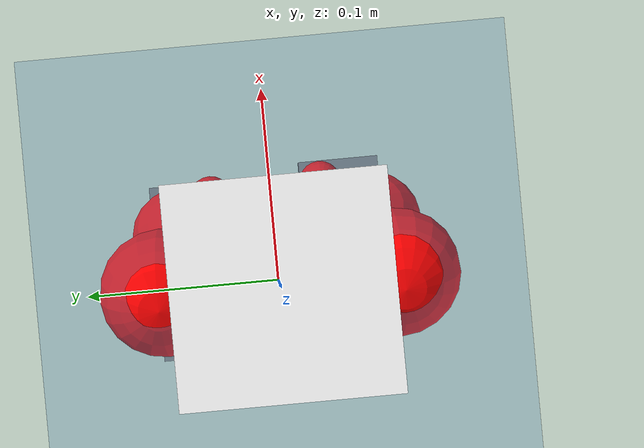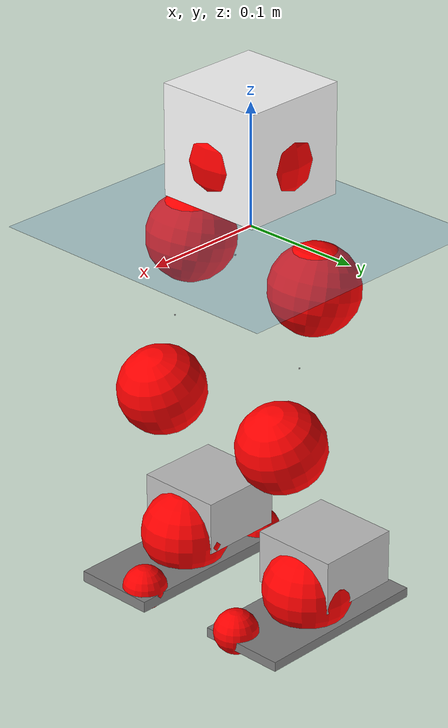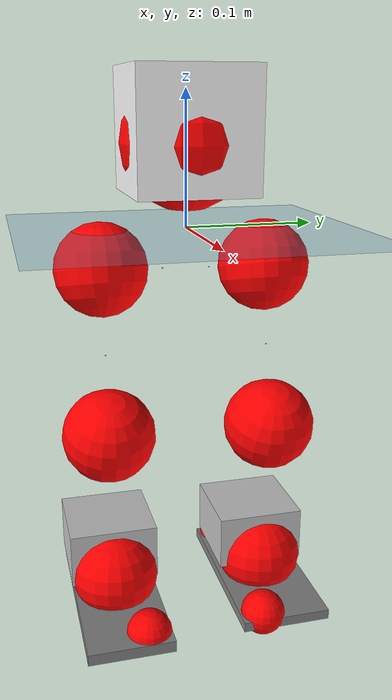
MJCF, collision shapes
<mujoco model="pi_12dof_release_v1">
  <compiler angle="radian" assetdir="assets" balanceinertia="true" inertiafromgeom="false"/>

  <option timestep="0.005" density="1.2" viscosity="2e-05"/>

  <size nkey="1"/>

  <visual>
    <quality shadowsize="8192"/>
    <map shadowclip="0.5"/>
  </visual>

  <default>
    <default class="/">
      <joint armature="0.01" damping="0.01" frictionloss="0.01"/>
      <geom contype="0" conaffinity="0" group="1" solref="-1000 -80"/>
      <site size="0.01 0.005 0.005" group="5"/>
      <general forcelimited="true" biastype="affine" gainprm="20" biasprm="0 -20 -0.5"/>
      <default class="foot">
        <geom size="0.0845 0.036 0.005" type="box" condim="6" group="4" priority="1" friction="0.9 0.2 0.2" solimp="0.015 1 0.005"/>
      </default>
      <default class="reward_collision_sphere">
        <geom group="5" rgba="1 0 0 1"/>
      </default>
    </default>
  </default>

  <asset>
    <texture type="skybox" colorspace="auto" name="//unnamed_texture_0" builtin="gradient" rgb1="0.95 0.95 0.95" rgb2="0.95 0.95 0.95" width="100" height="600"/>
    <texture type="2d" colorspace="auto" name="texplane" builtin="checker" rgb1="0.345 0.575 0.748" rgb2="0.345 0.575 0.748" markrgb="1 1 1" width="512" height="512"/>
    <material name="MatPlane" class="/" texture="texplane" texuniform="true" texrepeat="2 2" specular="0.9"/>
    <mesh name="baselink_1" class="/" file="baselink_1.STL"/>
    <mesh name="r_hip_pitch_link" class="/" file="r_hip_pitch_link.STL"/>
    <mesh name="r_hip_roll_link" class="/" file="r_hip_roll_link.STL"/>
    <mesh name="r_thigh_link" class="/" file="r_thigh_link.STL"/>
    <mesh name="r_calf_link" class="/" file="r_calf_link.STL"/>
    <mesh name="r_ankle_pitch_link" class="/" file="r_ankle_pitch_link.STL"/>
    <mesh name="r_ankle_roll_link" class="/" file="r_ankle_roll_link.STL"/>
    <mesh name="l_hip_pitch_link" class="/" file="l_hip_pitch_link.STL"/>
    <mesh name="l_hip_roll_link" class="/" file="l_hip_roll_link.STL"/>
    <mesh name="l_thigh_link" class="/" file="l_thigh_link.STL"/>
    <mesh name="l_calf_link" class="/" file="l_calf_link.STL"/>
    <mesh name="l_ankle_pitch_link" class="/" file="l_ankle_pitch_link.STL"/>
    <mesh name="l_ankle_roll_link" class="/" file="l_ankle_roll_link.STL"/>
  </asset>

  <worldbody>
    <geom name="floor" class="/" size="100 100 0.125" type="plane" group="0" material="MatPlane"/>
    <light name="toplight_shadow" class="/" pos="0 0 5" dir="0.0990148 0.0990148 -0.990148" type="directional" ambient="0.04 0.04 0.04" diffuse="0.55 0.55 0.55" specular="0.12 0.12 0.12"/>
    <light name="toplight_fill" class="/" pos="0 0 5" dir="0.0990148 0.0990148 -0.990148" type="directional" castshadow="false" ambient="0.04 0.04 0.04" diffuse="0.3 0.3 0.3" specular="0.08 0.08 0.08"/>
    <body name="trunk" pos="0.000323639 -0.00019272 -0.001333" quat="1 -2.7213e-05 -1.41609e-05 9.31137e-06">
      <inertial pos="0.000311414 -0.00315179 0.0359913" quat="0.695768 0.011426 0.0135115 0.718049" mass="1.56693" diaginertia="0.00807025 0.00390074 0.0025377"/>
      <joint name="//unnamed_joint_0" type="free"/>
      <geom name="//unnamed_geom_1" class="/" type="mesh" density="0" rgba="1 1 1 1" mesh="baselink_1"/>
      <geom name="//unnamed_geom_2" class="/" size="0.0449906 0.0449906 0.0449906" pos="0 0 0.0720802" type="box" rgba="1 1 1 1"/>
      <geom name="//unnamed_geom_3" class="reward_collision_sphere" size="0.0494896" pos="0 0 0.0630701"/>
      <site name="imu" class="/" pos="-0.013206 0.0013637 0.0117577" size="0.00899811"/>
      <camera name="track" class="/" pos="0 -1.68225 0" quat="0.707107 0.707107 0 0" mode="trackcom"/>
      <camera name="ego_camera" class="/" pos="0.0717979 0 0.16218" quat="-0.5 -0.5 0.5 0.5"/>
      <body name="r_hip_pitch_link" pos="-0.00225227 -0.0179934 -0.0292441" quat="0.992178 0.000116791 -0.124832 -0.000250446">
        <inertial pos="0.00343046 -0.0475852 -0.000303113" quat="-0.0161641 0.705656 -0.0298606 0.707741" mass="0.259615" diaginertia="8.39787e-05 4.11244e-05 4.84224e-05"/>
        <joint name="r_hip_pitch_joint" class="/" pos="0 0 0" axis="0.00327325 -0.99995 0.00943875" stiffness="0.0105389" range="-1.75104 1.19865" armature="0.00915233" damping="0" frictionloss="0.00940029"/>
        <geom name="//unnamed_geom_4" class="/" type="mesh" density="0" rgba="0.75294 0.75294 0.75294 1" mesh="r_hip_pitch_link"/>
        <geom name="//unnamed_geom_5" class="/" size="0.000449906 0.000449906 0.000449906" type="box" rgba="0.75294 0.75294 0.75294 1"/>
        <body name="r_hip_roll_link" pos="-0.000300324 -0.0472992 0.00103942" quat="1 9.83228e-05 5.46062e-05 0.000113494">
          <inertial pos="-0.00140169 6.26801e-06 -0.0529765" quat="0.703016 -0.0790857 -0.0795721 0.70227" mass="0.287662" diaginertia="0.000262094 0.000117945 7.74022e-05"/>
          <joint name="r_hip_roll_joint" class="/" pos="0 0 0" axis="-0.999923 0.0123725 -0.000112668" stiffness="0.00273879" range="-0.168816 0.480401" armature="0.00924637" damping="0.00820987" frictionloss="0.00971362"/>
          <geom name="//unnamed_geom_6" class="/" type="mesh" density="0" rgba="0.75294 0.75294 0.75294 1" mesh="r_hip_roll_link"/>
          <geom name="//unnamed_geom_7" class="/" size="0.000449906 0.000449906 0.000449906" type="box" rgba="0.75294 0.75294 0.75294 1"/>
          <geom name="//unnamed_geom_8" class="reward_collision_sphere" size="0.0359925"/>
          <body name="r_thigh_link" pos="0.00151915 -0.00126449 -0.0646712" quat="1 0.000483299 -0.000834405 0.000132592">
            <inertial pos="0.000878 0.000836138 -0.0417628" quat="0.734876 0.67819 -0.0026964 0.00280712" mass="0.0812731" diaginertia="0.00010022 3.96415e-05 3.4661e-05"/>
            <joint name="r_thigh_joint" class="/" pos="0 0 0" axis="-0.00694347 0.00426592 -0.999967" range="-0.318336 0.577646" armature="0.00865871" damping="0.000835763" frictionloss="0.00875983"/>
            <geom name="//unnamed_geom_9" class="/" type="mesh" density="0" rgba="0.75294 0.75294 0.75294 1" mesh="r_thigh_link"/>
            <geom name="//unnamed_geom_10" class="/" size="0.000449906 0.000449906 0.000449906" type="box" rgba="0.75294 0.75294 0.75294 1"/>
            <body name="r_calf_link" pos="-0.00171041 -0.00137366 -0.0615333" quat="0.947676 -0.000336868 0.319234 7.51581e-05">
              <inertial pos="0.00191664 -0.000998101 -0.062521" quat="0.999981 -0.00357924 -6.40874e-05 0.0049896" mass="0.606863" diaginertia="0.0028744 0.00149777 0.000104818"/>
              <joint name="r_calf_joint" class="/" pos="0 0 0" axis="0.00168888 -0.999998 0.00080486" range="-1.66029 0.65506" armature="0.00849538" damping="0.0134783" frictionloss="0.00901633"/>
              <geom name="//unnamed_geom_11" class="/" type="mesh" density="0" rgba="0.75294 0.75294 0.75294 1" mesh="r_calf_link"/>
              <geom name="//unnamed_geom_12" class="/" size="0.000449906 0.000449906 0.000449906" type="box" rgba="0.75294 0.75294 0.75294 1"/>
              <geom name="//unnamed_geom_13" class="reward_collision_sphere" size="0.0359925"/>
              <body name="r_ankle_pitch_link" pos="0.000416312 0.00300451 -0.126533" quat="0.980079 -3.59255e-05 -0.19861 2.83093e-05">
                <inertial pos="0.00470703 0.00250063 -0.0006058" quat="0.00587408 0.713587 -0.00762151 0.700501" mass="0.121335" diaginertia="0.000242758 9.23831e-05 6.93884e-05"/>
                <joint name="r_ankle_pitch_joint" class="/" pos="0 0 0" axis="0.00446101 -0.999977 0.00519315" range="-1.27549 0.483462" armature="0.00934008" damping="0" frictionloss="0.00900196"/>
                <geom name="//unnamed_geom_14" class="/" type="mesh" density="0" rgba="0.75294 0.75294 0.75294 1" mesh="r_ankle_pitch_link"/>
                <geom name="//unnamed_geom_15" class="/" size="0.0350926 0.0359925 0.0224953" type="box" rgba="0.75294 0.75294 0.75294 1"/>
                <body name="r_ankle_roll_link" pos="0.0760036 0.000664577 -3.82835e-05" quat="1 0.000123558 -6.75688e-05 3.60681e-05">
                  <inertial pos="-0.0227306 -9.52737e-05 -0.0106067" quat="0.561816 0.431197 0.433467 0.557259" mass="0.379001" diaginertia="0.000877828 0.000422543 0.000168965"/>
                  <joint name="r_ankle_roll_joint" class="/" pos="0 0 0" axis="-0.999994 0.0015603 0.00302336" stiffness="0.00174799" range="-0.175786 0.138999" armature="0.00853233" damping="0" frictionloss="0.0100108"/>
                  <geom name="//unnamed_geom_16" class="/" type="mesh" density="0" rgba="0.75294 0.75294 0.75294 1" mesh="r_ankle_roll_link"/>
                  <geom name="//unnamed_geom_17" class="/" type="mesh" rgba="0.75294 0.75294 0.75294 1" mesh="r_ankle_roll_link"/>
                  <geom name="right_foot" class="foot" size="0.0813571 0.034307 0.00464025" pos="-0.0488226 0 -0.0396441"/>
                  <geom name="//unnamed_geom_19" class="reward_collision_sphere" size="0.0359925" pos="-0.0478653 0 -0.01802"/>
                  <geom name="//unnamed_geom_20" class="reward_collision_sphere" size="0.0179962" pos="0.0143596 0.0168225 -0.0360401"/>
                  <geom name="//unnamed_geom_21" class="reward_collision_sphere" size="0.0179962" pos="-0.114877 0.0168225 -0.0360401"/>
                  <site name="right_foot" class="foot" pos="-0.0488226 0 -0.0396441" size="0.00899811"/>
                </body>
              </body>
            </body>
          </body>
        </body>
      </body>
      <body name="l_hip_pitch_link" pos="-0.00241777 0.0189698 -0.0301636" quat="0.992175 0.000213068 -0.124858 0.000197558">
        <inertial pos="0.000685029 0.0475201 0.000338902" quat="-0.0361081 0.705546 0.0267203 0.707239" mass="0.281839" diaginertia="0.000101465 4.44408e-05 5.64473e-05"/>
        <joint name="l_hip_pitch_joint" class="/" pos="0 0 0" axis="0.00604442 0.999982 0.000444728" stiffness="0.00014984" range="-1.29533 1.73186" armature="0.0101576" damping="0.000641899" frictionloss="0.00931562"/>
        <geom name="//unnamed_geom_22" class="/" type="mesh" density="0" rgba="0.75294 0.75294 0.75294 1" mesh="l_hip_pitch_link"/>
        <geom name="//unnamed_geom_23" class="/" size="0.000449906 0.000449906 0.000449906" type="box" rgba="0.75294 0.75294 0.75294 1"/>
        <body name="l_hip_roll_link" pos="-0.000273004 0.0446443 -0.00036739" quat="1 -7.8981e-08 2.18338e-08 1.0189e-07">
          <inertial pos="-0.000982764 0.00183591 -0.0542544" quat="0.698317 -0.0737942 -0.0775335 0.707741" mass="0.283255" diaginertia="0.000268496 0.000115986 7.5435e-05"/>
          <joint name="l_hip_roll_joint" class="/" pos="0 0 0" axis="-0.999896 0.0122075 0.00768304" range="-0.447676 0.133747" armature="0.00880128" damping="0.00727495" frictionloss="0.00794106"/>
          <geom name="//unnamed_geom_24" class="/" type="mesh" density="0" rgba="0.75294 0.75294 0.75294 1" mesh="l_hip_roll_link"/>
          <geom name="//unnamed_geom_25" class="/" size="0.000449906 0.000449906 0.000449906" type="box" rgba="0.75294 0.75294 0.75294 1"/>
          <geom name="//unnamed_geom_26" class="reward_collision_sphere" size="0.0359925"/>
          <body name="l_thigh_link" pos="-0.000633316 -0.000833601 -0.0629386" quat="1 -0.000136725 0.00026906 0.000162117">
            <inertial pos="0.000355429 -0.00166563 -0.0437431" quat="0.68468 0.728836 -0.000223325 -0.00334506" mass="0.0817377" diaginertia="0.000100714 3.9657e-05 3.31173e-05"/>
            <joint name="l_thigh_joint" class="/" pos="0 0 0" axis="-0.00288335 0.00361431 -0.999989" range="-0.616115 0.311564" armature="0.00902027" damping="0" frictionloss="0.00940546"/>
            <geom name="//unnamed_geom_27" class="/" type="mesh" density="0" rgba="0.75294 0.75294 0.75294 1" mesh="l_thigh_link"/>
            <geom name="//unnamed_geom_28" class="/" size="0.000449906 0.000449906 0.000449906" type="box" rgba="0.75294 0.75294 0.75294 1"/>
            <body name="l_calf_link" pos="0.00117319 -0.00189036 -0.0641315" quat="0.947611 0.000732762 0.319425 -0.000666489">
              <inertial pos="-0.00220511 0.00261355 -0.061155" quat="0.999948 0.00426953 0.00324775 0.00865338" mass="0.592801" diaginertia="0.00281831 0.00147372 0.000100229"/>
              <joint name="l_calf_joint" class="/" pos="0 0 0" axis="0.00263787 0.999995 0.00145072" range="-0.665851 1.60025" armature="0.00797419" damping="0.00693777" frictionloss="0.00792668"/>
              <geom name="//unnamed_geom_29" class="/" type="mesh" density="0" rgba="0.75294 0.75294 0.75294 1" mesh="l_calf_link"/>
              <geom name="//unnamed_geom_30" class="/" size="0.000449906 0.000449906 0.000449906" type="box" rgba="0.75294 0.75294 0.75294 1"/>
              <geom name="//unnamed_geom_31" class="reward_collision_sphere" size="0.0359925"/>
              <body name="l_ankle_pitch_link" pos="0.000762047 0.00145098 -0.123838" quat="0.980058 9.76921e-05 -0.19871 0.000241643">
                <inertial pos="0.00626425 0.000341788 -0.000448302" quat="-0.00230777 0.706991 0.00242345 0.707215" mass="0.119881" diaginertia="0.000232568 9.08107e-05 6.79867e-05"/>
                <joint name="l_ankle_pitch_joint" class="/" pos="0 0 0" axis="-0.002913 0.999967 -0.00763008" range="-0.504735 1.29458" armature="0.00918462" damping="0" frictionloss="0.0101727"/>
                <geom name="//unnamed_geom_32" class="/" type="mesh" density="0" rgba="0.75294 0.75294 0.75294 1" mesh="l_ankle_pitch_link"/>
                <geom name="//unnamed_geom_33" class="/" size="0.0350926 0.0359925 0.0224953" type="box" rgba="0.75294 0.75294 0.75294 1"/>
                <body name="l_ankle_roll_link" pos="0.0695339 0.00260168 -0.0008459" quat="1 1.37519e-07 -5.13938e-07 -1.71278e-06">
                  <inertial pos="-0.0230117 -0.000400111 -0.0126339" quat="0.557881 0.435206 0.425883 0.563904" mass="0.379886" diaginertia="0.000909992 0.000447962 0.000170173"/>
                  <joint name="l_ankle_roll_joint" class="/" pos="0 0 0" axis="-0.999997 0.000657983 -0.00227511" stiffness="0.000710514" range="-0.156095 0.150455" armature="0.00944885" damping="0.00815301" frictionloss="0.00782454"/>
                  <geom name="//unnamed_geom_34" class="/" type="mesh" density="0" rgba="0.75294 0.75294 0.75294 1" mesh="l_ankle_roll_link"/>
                  <geom name="//unnamed_geom_35" class="/" type="mesh" rgba="0.75294 0.75294 0.75294 1" mesh="l_ankle_roll_link"/>
                  <geom name="left_foot" class="foot" size="0.0756132 0.0361596 0.00402814" pos="-0.0488226 0 -0.0396441"/>
                  <geom name="//unnamed_geom_37" class="reward_collision_sphere" size="0.0359925" pos="-0.0478653 0 -0.01802"/>
                  <geom name="//unnamed_geom_38" class="reward_collision_sphere" size="0.0179962" pos="0.0143596 -0.0168225 -0.0360401"/>
                  <geom name="//unnamed_geom_39" class="reward_collision_sphere" size="0.0179962" pos="-0.114877 -0.0168225 -0.0360401"/>
                  <site name="left_foot" class="foot" pos="-0.0488226 0 -0.0396441" size="0.00899811"/>
                </body>
              </body>
            </body>
          </body>
        </body>
      </body>
    </body>
  </worldbody>

  <contact>
    <pair class="/" geom1="floor" geom2="right_foot" name="//unnamed_contact_1"/>
    <pair class="/" geom1="floor" geom2="left_foot" name="//unnamed_contact_0"/>
  </contact>

  <actuator>
    <general name="r_hip_pitch_joint" class="/" joint="r_hip_pitch_joint" forcerange="-18.3238 18.3238" gainprm="18.1544" biasprm="0 -18.1544 -0.47853"/>
    <general name="r_hip_roll_joint" class="/" joint="r_hip_roll_joint" forcerange="-17.4093 17.4093" gainprm="18.1544" biasprm="0 -18.1544 -0.47853"/>
    <general name="r_thigh_joint" class="/" joint="r_thigh_joint" forcerange="-20.148 20.148" gainprm="18.1544" biasprm="0 -18.1544 -0.47853"/>
    <general name="r_calf_joint" class="/" joint="r_calf_joint" forcerange="-18.7223 18.7223" gainprm="18.1544" biasprm="0 -18.1544 -0.47853"/>
    <general name="r_ankle_pitch_joint" class="/" joint="r_ankle_pitch_joint" forcerange="-17.407 17.407" gainprm="18.1544" biasprm="0 -18.1544 -0.47853"/>
    <general name="r_ankle_roll_joint" class="/" joint="r_ankle_roll_joint" forcerange="-18.731 18.731" gainprm="18.1544" biasprm="0 -18.1544 -0.47853"/>
    <general name="l_hip_pitch_joint" class="/" joint="l_hip_pitch_joint" forcerange="-19.1633 19.1633" gainprm="18.1544" biasprm="0 -18.1544 -0.47853"/>
    <general name="l_hip_roll_joint" class="/" joint="l_hip_roll_joint" forcerange="-18.5866 18.5866" gainprm="18.1544" biasprm="0 -18.1544 -0.47853"/>
    <general name="l_thigh_joint" class="/" joint="l_thigh_joint" forcerange="-19.6105 19.6105" gainprm="18.1544" biasprm="0 -18.1544 -0.47853"/>
    <general name="l_calf_joint" class="/" joint="l_calf_joint" forcerange="-18.3084 18.3084" gainprm="18.1544" biasprm="0 -18.1544 -0.47853"/>
    <general name="l_ankle_pitch_joint" class="/" joint="l_ankle_pitch_joint" forcerange="-18.6705 18.6705" gainprm="18.1544" biasprm="0 -18.1544 -0.47853"/>
    <general name="l_ankle_roll_joint" class="/" joint="l_ankle_roll_joint" forcerange="-17.2508 17.2508" gainprm="18.1544" biasprm="0 -18.1544 -0.47853"/>
  </actuator>

  <sensor>
    <gyro site="imu" name="imu_angular_velocity"/>
    <velocimeter site="imu" name="imu_linear_velocity"/>
    <framelinvel objtype="site" objname="left_foot" name="left_foot_global_linear_velocity"/>
    <framelinvel objtype="site" objname="right_foot" name="right_foot_global_linear_velocity"/>
  </sensor>

  <keyframe>
    <key name="home" qpos="0 0 0.291 1 0 0 0 0.4 0 0 -0.8 0.4 0 -0.4 0 0 0.8 -0.4 0"/>
  </keyframe>
</mujoco>
